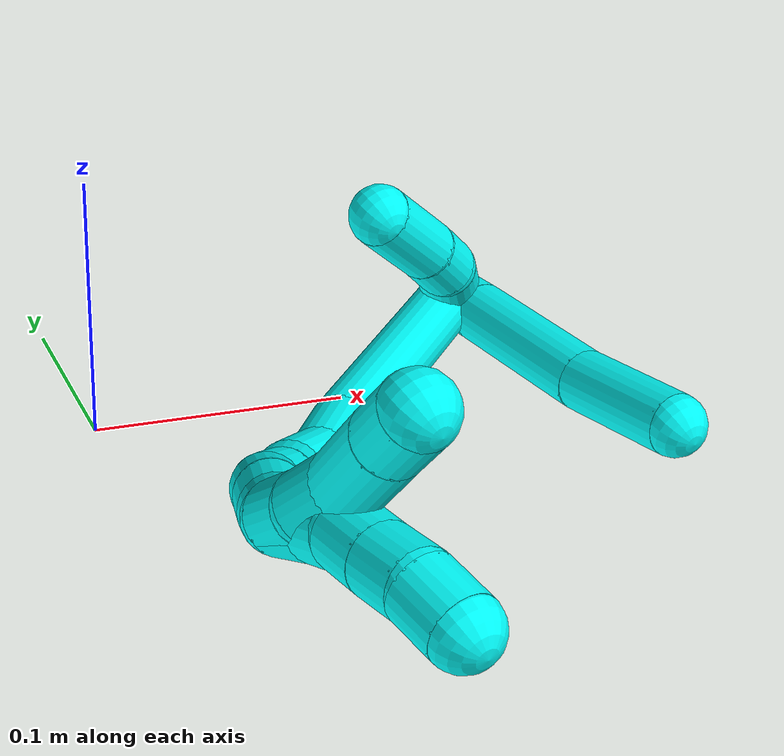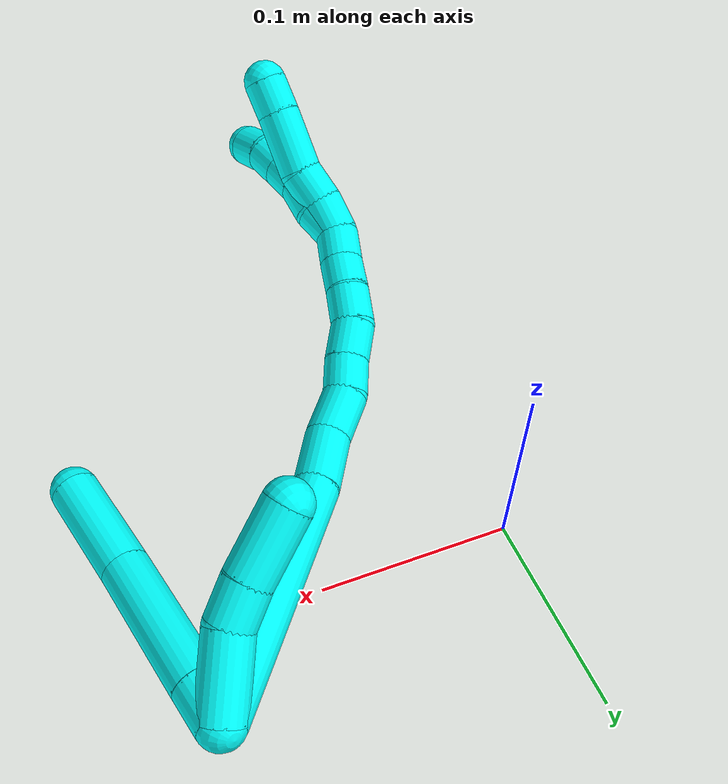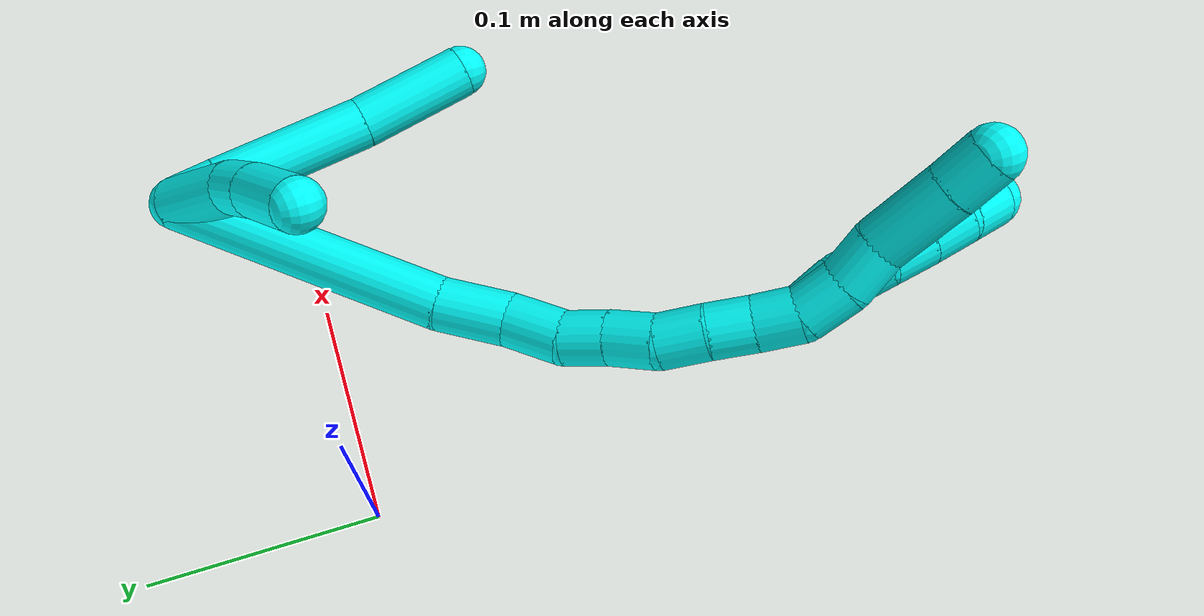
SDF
<sdf version="1.7">
 <world name="default">
  <model name="3">
   <static>0</static>
   <link name="3">
    <collision name="collision-cylinder-e_1_2_8">
     <pose>-0.000179 0.002994 0.010444 -0.279227 -0.016436 0.00231</pose>
     <geometry><cylinder><radius>0.0125</radius><length>0.021732</length></cylinder></geometry>
     <surface>
      <friction><ode><mu>1.16</mu><mu2>1.16</mu2><slip1>0</slip1><slip2>0</slip2></ode></friction>
      <contact><ode><kp>1e+06</kp><kd>1</kd><max_vel>0</max_vel><min_depth>0.001</min_depth></ode></contact>
     </surface>
    </collision>
    <visual name="visual-cylinder-e_1_2_8">
     <pose>-0.000179 0.002994 0.010444 -0.279227 -0.016436 0.00231</pose>
     <geometry><cylinder><radius>0.0125</radius><length>0.021732</length></cylinder></geometry>
     <material><ambient>0.003922 1 0.996078 1</ambient></material>
    </visual>
    <collision name="collision-cylinder-e_2_8_9">
     <pose>-0.001344 0.01535 0.056258 -0.258739 -0.026975 0.00351</pose>
     <geometry><cylinder><radius>0.0125</radius><length>0.073203</length></cylinder></geometry>
     <surface>
      <friction><ode><mu>1.16</mu><mu2>1.16</mu2><slip1>0</slip1><slip2>0</slip2></ode></friction>
      <contact><ode><kp>1e+06</kp><kd>1</kd><max_vel>0</max_vel><min_depth>0.001</min_depth></ode></contact>
     </surface>
    </collision>
    <visual name="visual-cylinder-e_2_8_9">
     <pose>-0.001344 0.01535 0.056258 -0.258739 -0.026975 0.00351</pose>
     <geometry><cylinder><radius>0.0125</radius><length>0.073203</length></cylinder></geometry>
     <material><ambient>0.003922 1 0.996078 1</ambient></material>
    </visual>
    <collision name="collision-cylinder-e_3_9_6">
     <pose>-0.002087 0.033938 0.117567 -0.341724 0.008894 -0.001535</pose>
     <geometry><cylinder><radius>0.0125</radius><length>0.055065</length></cylinder></geometry>
     <surface>
      <friction><ode><mu>1.16</mu><mu2>1.16</mu2><slip1>0</slip1><slip2>0</slip2></ode></friction>
      <contact><ode><kp>1e+06</kp><kd>1</kd><max_vel>0</max_vel><min_depth>0.001</min_depth></ode></contact>
     </surface>
    </collision>
    <visual name="visual-cylinder-e_3_9_6">
     <pose>-0.002087 0.033938 0.117567 -0.341724 0.008894 -0.001535</pose>
     <geometry><cylinder><radius>0.0125</radius><length>0.055065</length></cylinder></geometry>
     <material><ambient>0.003922 1 0.996078 1</ambient></material>
    </visual>
    <collision name="collision-cylinder-e_1_2_10">
     <pose>-0.010022 0.015885 0.008011 -1.10369 -0.513 0.320179</pose>
     <geometry><cylinder><radius>0.0125</radius><length>0.040839</length></cylinder></geometry>
     <surface>
      <friction><ode><mu>1.16</mu><mu2>1.16</mu2><slip1>0</slip1><slip2>0</slip2></ode></friction>
      <contact><ode><kp>1e+06</kp><kd>1</kd><max_vel>0</max_vel><min_depth>0.001</min_depth></ode></contact>
     </surface>
    </collision>
    <visual name="visual-cylinder-e_1_2_10">
     <pose>-0.010022 0.015885 0.008011 -1.10369 -0.513 0.320179</pose>
     <geometry><cylinder><radius>0.0125</radius><length>0.040839</length></cylinder></geometry>
     <material><ambient>0.003922 1 0.996078 1</ambient></material>
    </visual>
    <collision name="collision-cylinder-e_2_10_11">
     <pose>-0.027335 0.039462 0.017554 -1.37431 -0.748997 0.623979</pose>
     <geometry><cylinder><radius>0.0125</radius><length>0.021416</length></cylinder></geometry>
     <surface>
      <friction><ode><mu>1.16</mu><mu2>1.16</mu2><slip1>0</slip1><slip2>0</slip2></ode></friction>
      <contact><ode><kp>1e+06</kp><kd>1</kd><max_vel>0</max_vel><min_depth>0.001</min_depth></ode></contact>
     </surface>
    </collision>
    <visual name="visual-cylinder-e_2_10_11">
     <pose>-0.027335 0.039462 0.017554 -1.37431 -0.748997 0.623979</pose>
     <geometry><cylinder><radius>0.0125</radius><length>0.021416</length></cylinder></geometry>
     <material><ambient>0.003922 1 0.996078 1</ambient></material>
    </visual>
    <collision name="collision-cylinder-e_3_11_5">
     <pose>-0.048393 0.059997 0.020375 -1.47069 -0.817597 0.746958</pose>
     <geometry><cylinder><radius>0.0125</radius><length>0.037745</length></cylinder></geometry>
     <surface>
      <friction><ode><mu>1.16</mu><mu2>1.16</mu2><slip1>0</slip1><slip2>0</slip2></ode></friction>
      <contact><ode><kp>1e+06</kp><kd>1</kd><max_vel>0</max_vel><min_depth>0.001</min_depth></ode></contact>
     </surface>
    </collision>
    <visual name="visual-cylinder-e_3_11_5">
     <pose>-0.048393 0.059997 0.020375 -1.47069 -0.817597 0.746958</pose>
     <geometry><cylinder><radius>0.0125</radius><length>0.037745</length></cylinder></geometry>
     <material><ambient>0.003922 1 0.996078 1</ambient></material>
    </visual>
    <collision name="collision-cylinder-e_1_2_12">
     <pose>-0.053151 0.012452 0.03866 -0.31159 -0.91829 0.154993</pose>
     <geometry><cylinder><radius>0.0125</radius><length>0.133785</length></cylinder></geometry>
     <surface>
      <friction><ode><mu>1.16</mu><mu2>1.16</mu2><slip1>0</slip1><slip2>0</slip2></ode></friction>
      <contact><ode><kp>1e+06</kp><kd>1</kd><max_vel>0</max_vel><min_depth>0.001</min_depth></ode></contact>
     </surface>
    </collision>
    <visual name="visual-cylinder-e_1_2_12">
     <pose>-0.053151 0.012452 0.03866 -0.31159 -0.91829 0.154993</pose>
     <geometry><cylinder><radius>0.0125</radius><length>0.133785</length></cylinder></geometry>
     <material><ambient>0.003922 1 0.996078 1</ambient></material>
    </visual>
    <collision name="collision-cylinder-e_2_12_13">
     <pose>-0.118083 0.029416 0.088004 -0.399629 -0.793298 0.169243</pose>
     <geometry><cylinder><radius>0.0125</radius><length>0.033064</length></cylinder></geometry>
     <surface>
      <friction><ode><mu>1.16</mu><mu2>1.16</mu2><slip1>0</slip1><slip2>0</slip2></ode></friction>
      <contact><ode><kp>1e+06</kp><kd>1</kd><max_vel>0</max_vel><min_depth>0.001</min_depth></ode></contact>
     </surface>
    </collision>
    <visual name="visual-cylinder-e_2_12_13">
     <pose>-0.118083 0.029416 0.088004 -0.399629 -0.793298 0.169243</pose>
     <geometry><cylinder><radius>0.0125</radius><length>0.033064</length></cylinder></geometry>
     <material><ambient>0.003922 1 0.996078 1</ambient></material>
    </visual>
    <collision name="collision-cylinder-e_3_13_14">
     <pose>-0.140885 0.039428 0.10488 -0.726287 -0.926275 0.375052</pose>
     <geometry><cylinder><radius>0.0125</radius><length>0.027572</length></cylinder></geometry>
     <surface>
      <friction><ode><mu>1.16</mu><mu2>1.16</mu2><slip1>0</slip1><slip2>0</slip2></ode></friction>
      <contact><ode><kp>1e+06</kp><kd>1</kd><max_vel>0</max_vel><min_depth>0.001</min_depth></ode></contact>
     </surface>
    </collision>
    <visual name="visual-cylinder-e_3_13_14">
     <pose>-0.140885 0.039428 0.10488 -0.726287 -0.926275 0.375052</pose>
     <geometry><cylinder><radius>0.0125</radius><length>0.027572</length></cylinder></geometry>
     <material><ambient>0.003922 1 0.996078 1</ambient></material>
    </visual>
    <collision name="collision-cylinder-e_4_14_15">
     <pose>-0.157861 0.050612 0.117468 -0.726492 -0.608072 0.23741</pose>
     <geometry><cylinder><radius>0.0125</radius><length>0.020849</length></cylinder></geometry>
     <surface>
      <friction><ode><mu>1.16</mu><mu2>1.16</mu2><slip1>0</slip1><slip2>0</slip2></ode></friction>
      <contact><ode><kp>1e+06</kp><kd>1</kd><max_vel>0</max_vel><min_depth>0.001</min_depth></ode></contact>
     </surface>
    </collision>
    <visual name="visual-cylinder-e_4_14_15">
     <pose>-0.157861 0.050612 0.117468 -0.726492 -0.608072 0.23741</pose>
     <geometry><cylinder><radius>0.0125</radius><length>0.020849</length></cylinder></geometry>
     <material><ambient>0.003922 1 0.996078 1</ambient></material>
    </visual>
    <collision name="collision-cylinder-e_5_15_16">
     <pose>-0.171133 0.062599 0.129687 -0.824962 -0.706016 0.319697</pose>
     <geometry><cylinder><radius>0.0125</radius><length>0.022555</length></cylinder></geometry>
     <surface>
      <friction><ode><mu>1.16</mu><mu2>1.16</mu2><slip1>0</slip1><slip2>0</slip2></ode></friction>
      <contact><ode><kp>1e+06</kp><kd>1</kd><max_vel>0</max_vel><min_depth>0.001</min_depth></ode></contact>
     </surface>
    </collision>
    <visual name="visual-cylinder-e_5_15_16">
     <pose>-0.171133 0.062599 0.129687 -0.824962 -0.706016 0.319697</pose>
     <geometry><cylinder><radius>0.0125</radius><length>0.022555</length></cylinder></geometry>
     <material><ambient>0.003922 1 0.996078 1</ambient></material>
    </visual>
    <collision name="collision-cylinder-e_6_16_17">
     <pose>-0.182861 0.075364 0.143044 -0.70899 -0.418173 0.156752</pose>
     <geometry><cylinder><radius>0.0125</radius><length>0.021722</length></cylinder></geometry>
     <surface>
      <friction><ode><mu>1.16</mu><mu2>1.16</mu2><slip1>0</slip1><slip2>0</slip2></ode></friction>
      <contact><ode><kp>1e+06</kp><kd>1</kd><max_vel>0</max_vel><min_depth>0.001</min_depth></ode></contact>
     </surface>
    </collision>
    <visual name="visual-cylinder-e_6_16_17">
     <pose>-0.182861 0.075364 0.143044 -0.70899 -0.418173 0.156752</pose>
     <geometry><cylinder><radius>0.0125</radius><length>0.021722</length></cylinder></geometry>
     <material><ambient>0.003922 1 0.996078 1</ambient></material>
    </visual>
    <collision name="collision-cylinder-e_7_17_18">
     <pose>-0.191412 0.086786 0.158332 -0.569082 -0.422721 0.125347</pose>
     <geometry><cylinder><radius>0.0125</radius><length>0.020187</length></cylinder></geometry>
     <surface>
      <friction><ode><mu>1.16</mu><mu2>1.16</mu2><slip1>0</slip1><slip2>0</slip2></ode></friction>
      <contact><ode><kp>1e+06</kp><kd>1</kd><max_vel>0</max_vel><min_depth>0.001</min_depth></ode></contact>
     </surface>
    </collision>
    <visual name="visual-cylinder-e_7_17_18">
     <pose>-0.191412 0.086786 0.158332 -0.569082 -0.422721 0.125347</pose>
     <geometry><cylinder><radius>0.0125</radius><length>0.020187</length></cylinder></geometry>
     <material><ambient>0.003922 1 0.996078 1</ambient></material>
    </visual>
    <collision name="collision-cylinder-e_8_18_1">
     <pose>-0.199652 0.09794 0.172979 -0.731986 -0.41646 0.161608</pose>
     <geometry><cylinder><radius>0.0125</radius><length>0.020266</length></cylinder></geometry>
     <surface>
      <friction><ode><mu>1.16</mu><mu2>1.16</mu2><slip1>0</slip1><slip2>0</slip2></ode></friction>
      <contact><ode><kp>1e+06</kp><kd>1</kd><max_vel>0</max_vel><min_depth>0.001</min_depth></ode></contact>
     </surface>
    </collision>
    <visual name="visual-cylinder-e_8_18_1">
     <pose>-0.199652 0.09794 0.172979 -0.731986 -0.41646 0.161608</pose>
     <geometry><cylinder><radius>0.0125</radius><length>0.020266</length></cylinder></geometry>
     <material><ambient>0.003922 1 0.996078 1</ambient></material>
    </visual>
    <collision name="collision-cylinder-e_1_1_19">
     <pose>-0.204157 0.112344 0.186902 -0.862647 -0.037612 0.017312</pose>
     <geometry><cylinder><radius>0.0125</radius><length>0.021634</length></cylinder></geometry>
     <surface>
      <friction><ode><mu>1.16</mu><mu2>1.16</mu2><slip1>0</slip1><slip2>0</slip2></ode></friction>
      <contact><ode><kp>1e+06</kp><kd>1</kd><max_vel>0</max_vel><min_depth>0.001</min_depth></ode></contact>
     </surface>
    </collision>
    <visual name="visual-cylinder-e_1_1_19">
     <pose>-0.204157 0.112344 0.186902 -0.862647 -0.037612 0.017312</pose>
     <geometry><cylinder><radius>0.0125</radius><length>0.021634</length></cylinder></geometry>
     <material><ambient>0.003922 1 0.996078 1</ambient></material>
    </visual>
    <collision name="collision-cylinder-e_2_19_20">
     <pose>-0.20249 0.129272 0.19962 -0.992757 0.196727 -0.106793</pose>
     <geometry><cylinder><radius>0.0125</radius><length>0.021227</length></cylinder></geometry>
     <surface>
      <friction><ode><mu>1.16</mu><mu2>1.16</mu2><slip1>0</slip1><slip2>0</slip2></ode></friction>
      <contact><ode><kp>1e+06</kp><kd>1</kd><max_vel>0</max_vel><min_depth>0.001</min_depth></ode></contact>
     </surface>
    </collision>
    <visual name="visual-cylinder-e_2_19_20">
     <pose>-0.20249 0.129272 0.19962 -0.992757 0.196727 -0.106793</pose>
     <geometry><cylinder><radius>0.0125</radius><length>0.021227</length></cylinder></geometry>
     <material><ambient>0.003922 1 0.996078 1</ambient></material>
    </visual>
    <collision name="collision-cylinder-e_3_20_21">
     <pose>-0.201002 0.154207 0.213929 -1.08219 -0.031955 0.019204</pose>
     <geometry><cylinder><radius>0.0125</radius><length>0.036753</length></cylinder></geometry>
     <surface>
      <friction><ode><mu>1.16</mu><mu2>1.16</mu2><slip1>0</slip1><slip2>0</slip2></ode></friction>
      <contact><ode><kp>1e+06</kp><kd>1</kd><max_vel>0</max_vel><min_depth>0.001</min_depth></ode></contact>
     </surface>
    </collision>
    <visual name="visual-cylinder-e_3_20_21">
     <pose>-0.201002 0.154207 0.213929 -1.08219 -0.031955 0.019204</pose>
     <geometry><cylinder><radius>0.0125</radius><length>0.036753</length></cylinder></geometry>
     <material><ambient>0.003922 1 0.996078 1</ambient></material>
    </visual>
    <collision name="collision-cylinder-e_4_21_4">
     <pose>-0.201559 0.179411 0.227363 -1.07908 0.003042 -0.001822</pose>
     <geometry><cylinder><radius>0.0125</radius><length>0.020387</length></cylinder></geometry>
     <surface>
      <friction><ode><mu>1.16</mu><mu2>1.16</mu2><slip1>0</slip1><slip2>0</slip2></ode></friction>
      <contact><ode><kp>1e+06</kp><kd>1</kd><max_vel>0</max_vel><min_depth>0.001</min_depth></ode></contact>
     </surface>
    </collision>
    <visual name="visual-cylinder-e_4_21_4">
     <pose>-0.201559 0.179411 0.227363 -1.07908 0.003042 -0.001822</pose>
     <geometry><cylinder><radius>0.0125</radius><length>0.020387</length></cylinder></geometry>
     <material><ambient>0.003922 1 0.996078 1</ambient></material>
    </visual>
    <collision name="collision-cylinder-e_1_1_22">
     <pose>-0.202444 0.109497 0.18821 -0.571612 0.131011 -0.038548</pose>
     <geometry><cylinder><radius>0.0125</radius><length>0.02</length></cylinder></geometry>
     <surface>
      <friction><ode><mu>1.16</mu><mu2>1.16</mu2><slip1>0</slip1><slip2>0</slip2></ode></friction>
      <contact><ode><kp>1e+06</kp><kd>1</kd><max_vel>0</max_vel><min_depth>0.001</min_depth></ode></contact>
     </surface>
    </collision>
    <visual name="visual-cylinder-e_1_1_22">
     <pose>-0.202444 0.109497 0.18821 -0.571612 0.131011 -0.038548</pose>
     <geometry><cylinder><radius>0.0125</radius><length>0.02</length></cylinder></geometry>
     <material><ambient>0.003922 1 0.996078 1</ambient></material>
    </visual>
    <collision name="collision-cylinder-e_2_22_23">
     <pose>-0.202061 0.12061 0.204678 -0.615608 -0.092433 0.029404</pose>
     <geometry><cylinder><radius>0.0125</radius><length>0.02</length></cylinder></geometry>
     <surface>
      <friction><ode><mu>1.16</mu><mu2>1.16</mu2><slip1>0</slip1><slip2>0</slip2></ode></friction>
      <contact><ode><kp>1e+06</kp><kd>1</kd><max_vel>0</max_vel><min_depth>0.001</min_depth></ode></contact>
     </surface>
    </collision>
    <visual name="visual-cylinder-e_2_22_23">
     <pose>-0.202061 0.12061 0.204678 -0.615608 -0.092433 0.029404</pose>
     <geometry><cylinder><radius>0.0125</radius><length>0.02</length></cylinder></geometry>
     <material><ambient>0.003922 1 0.996078 1</ambient></material>
    </visual>
    <collision name="collision-cylinder-e_3_23_24">
     <pose>-0.203334 0.129395 0.222329 -0.308501 -0.035046 0.00545</pose>
     <geometry><cylinder><radius>0.0125</radius><length>0.02</length></cylinder></geometry>
     <surface>
      <friction><ode><mu>1.16</mu><mu2>1.16</mu2><slip1>0</slip1><slip2>0</slip2></ode></friction>
      <contact><ode><kp>1e+06</kp><kd>1</kd><max_vel>0</max_vel><min_depth>0.001</min_depth></ode></contact>
     </surface>
    </collision>
    <visual name="visual-cylinder-e_3_23_24">
     <pose>-0.203334 0.129395 0.222329 -0.308501 -0.035046 0.00545</pose>
     <geometry><cylinder><radius>0.0125</radius><length>0.02</length></cylinder></geometry>
     <material><ambient>0.003922 1 0.996078 1</ambient></material>
    </visual>
    <collision name="collision-cylinder-e_4_24_25">
     <pose>-0.203738 0.135638 0.241322 -0.326707 -0.005325 0.000878</pose>
     <geometry><cylinder><radius>0.0125</radius><length>0.02</length></cylinder></geometry>
     <surface>
      <friction><ode><mu>1.16</mu><mu2>1.16</mu2><slip1>0</slip1><slip2>0</slip2></ode></friction>
      <contact><ode><kp>1e+06</kp><kd>1</kd><max_vel>0</max_vel><min_depth>0.001</min_depth></ode></contact>
     </surface>
    </collision>
    <visual name="visual-cylinder-e_4_24_25">
     <pose>-0.203738 0.135638 0.241322 -0.326707 -0.005325 0.000878</pose>
     <geometry><cylinder><radius>0.0125</radius><length>0.02</length></cylinder></geometry>
     <material><ambient>0.003922 1 0.996078 1</ambient></material>
    </visual>
    <collision name="collision-cylinder-e_5_25_3">
     <pose>-0.203308 0.139549 0.260757 -0.070318 0.048317 -0.0017</pose>
     <geometry><cylinder><radius>0.0125</radius><length>0.02</length></cylinder></geometry>
     <surface>
      <friction><ode><mu>1.16</mu><mu2>1.16</mu2><slip1>0</slip1><slip2>0</slip2></ode></friction>
      <contact><ode><kp>1e+06</kp><kd>1</kd><max_vel>0</max_vel><min_depth>0.001</min_depth></ode></contact>
     </surface>
    </collision>
    <visual name="visual-cylinder-e_5_25_3">
     <pose>-0.203308 0.139549 0.260757 -0.070318 0.048317 -0.0017</pose>
     <geometry><cylinder><radius>0.0125</radius><length>0.02</length></cylinder></geometry>
     <material><ambient>0.003922 1 0.996078 1</ambient></material>
    </visual>
    <collision name="collision-sphere-3">
     <pose>-0.202825 0.140251 0.27072 0 -0 0</pose>
     <geometry><sphere><radius>0.0125</radius></sphere></geometry>
     <surface>
      <friction><ode><mu>1.16</mu><mu2>1.16</mu2><slip1>0</slip1><slip2>0</slip2></ode></friction>
      <contact><ode><kp>1e+06</kp><kd>1</kd><max_vel>0</max_vel><min_depth>0.001</min_depth></ode></contact>
     </surface>
    </collision>
    <visual name="visual-sphere-3">
     <pose>-0.202825 0.140251 0.27072 0 -0 0</pose>
     <geometry><sphere><radius>0.0125</radius></sphere></geometry>
     <material><ambient>0.003922 1 0.996078 1</ambient></material>
    </visual>
    <collision name="collision-sphere-25">
     <pose>-0.203791 0.138848 0.250793 0 -0 0</pose>
     <geometry><sphere><radius>0.0125</radius></sphere></geometry>
     <surface>
      <friction><ode><mu>1.16</mu><mu2>1.16</mu2><slip1>0</slip1><slip2>0</slip2></ode></friction>
      <contact><ode><kp>1e+06</kp><kd>1</kd><max_vel>0</max_vel><min_depth>0.001</min_depth></ode></contact>
     </surface>
    </collision>
    <visual name="visual-sphere-25">
     <pose>-0.203791 0.138848 0.250793 0 -0 0</pose>
     <geometry><sphere><radius>0.0125</radius></sphere></geometry>
     <material><ambient>0.003922 1 0.996078 1</ambient></material>
    </visual>
    <collision name="collision-sphere-24">
     <pose>-0.203685 0.132429 0.231851 0 -0 0</pose>
     <geometry><sphere><radius>0.0125</radius></sphere></geometry>
     <surface>
      <friction><ode><mu>1.16</mu><mu2>1.16</mu2><slip1>0</slip1><slip2>0</slip2></ode></friction>
      <contact><ode><kp>1e+06</kp><kd>1</kd><max_vel>0</max_vel><min_depth>0.001</min_depth></ode></contact>
     </surface>
    </collision>
    <visual name="visual-sphere-24">
     <pose>-0.203685 0.132429 0.231851 0 -0 0</pose>
     <geometry><sphere><radius>0.0125</radius></sphere></geometry>
     <material><ambient>0.003922 1 0.996078 1</ambient></material>
    </visual>
    <collision name="collision-sphere-23">
     <pose>-0.202984 0.12636 0.212807 0 -0 0</pose>
     <geometry><sphere><radius>0.0125</radius></sphere></geometry>
     <surface>
      <friction><ode><mu>1.16</mu><mu2>1.16</mu2><slip1>0</slip1><slip2>0</slip2></ode></friction>
      <contact><ode><kp>1e+06</kp><kd>1</kd><max_vel>0</max_vel><min_depth>0.001</min_depth></ode></contact>
     </surface>
    </collision>
    <visual name="visual-sphere-23">
     <pose>-0.202984 0.12636 0.212807 0 -0 0</pose>
     <geometry><sphere><radius>0.0125</radius></sphere></geometry>
     <material><ambient>0.003922 1 0.996078 1</ambient></material>
    </visual>
    <collision name="collision-sphere-22">
     <pose>-0.201138 0.11486 0.196548 0 -0 0</pose>
     <geometry><sphere><radius>0.0125</radius></sphere></geometry>
     <surface>
      <friction><ode><mu>1.16</mu><mu2>1.16</mu2><slip1>0</slip1><slip2>0</slip2></ode></friction>
      <contact><ode><kp>1e+06</kp><kd>1</kd><max_vel>0</max_vel><min_depth>0.001</min_depth></ode></contact>
     </surface>
    </collision>
    <visual name="visual-sphere-22">
     <pose>-0.201138 0.11486 0.196548 0 -0 0</pose>
     <geometry><sphere><radius>0.0125</radius></sphere></geometry>
     <material><ambient>0.003922 1 0.996078 1</ambient></material>
    </visual>
    <collision name="collision-sphere-4">
     <pose>-0.201528 0.188396 0.232175 0 -0 0</pose>
     <geometry><sphere><radius>0.0125</radius></sphere></geometry>
     <surface>
      <friction><ode><mu>1.16</mu><mu2>1.16</mu2><slip1>0</slip1><slip2>0</slip2></ode></friction>
      <contact><ode><kp>1e+06</kp><kd>1</kd><max_vel>0</max_vel><min_depth>0.001</min_depth></ode></contact>
     </surface>
    </collision>
    <visual name="visual-sphere-4">
     <pose>-0.201528 0.188396 0.232175 0 -0 0</pose>
     <geometry><sphere><radius>0.0125</radius></sphere></geometry>
     <material><ambient>0.003922 1 0.996078 1</ambient></material>
    </visual>
    <collision name="collision-sphere-21">
     <pose>-0.20159 0.170425 0.22255 0 -0 0</pose>
     <geometry><sphere><radius>0.0125</radius></sphere></geometry>
     <surface>
      <friction><ode><mu>1.16</mu><mu2>1.16</mu2><slip1>0</slip1><slip2>0</slip2></ode></friction>
      <contact><ode><kp>1e+06</kp><kd>1</kd><max_vel>0</max_vel><min_depth>0.001</min_depth></ode></contact>
     </surface>
    </collision>
    <visual name="visual-sphere-21">
     <pose>-0.20159 0.170425 0.22255 0 -0 0</pose>
     <geometry><sphere><radius>0.0125</radius></sphere></geometry>
     <material><ambient>0.003922 1 0.996078 1</ambient></material>
    </visual>
    <collision name="collision-sphere-20">
     <pose>-0.200415 0.137989 0.205307 0 -0 0</pose>
     <geometry><sphere><radius>0.0125</radius></sphere></geometry>
     <surface>
      <friction><ode><mu>1.16</mu><mu2>1.16</mu2><slip1>0</slip1><slip2>0</slip2></ode></friction>
      <contact><ode><kp>1e+06</kp><kd>1</kd><max_vel>0</max_vel><min_depth>0.001</min_depth></ode></contact>
     </surface>
    </collision>
    <visual name="visual-sphere-20">
     <pose>-0.200415 0.137989 0.205307 0 -0 0</pose>
     <geometry><sphere><radius>0.0125</radius></sphere></geometry>
     <material><ambient>0.003922 1 0.996078 1</ambient></material>
    </visual>
    <collision name="collision-sphere-11">
     <pose>-0.034626 0.047153 0.019085 0 -0 0</pose>
     <geometry><sphere><radius>0.0125</radius></sphere></geometry>
     <surface>
      <friction><ode><mu>1.16</mu><mu2>1.16</mu2><slip1>0</slip1><slip2>0</slip2></ode></friction>
      <contact><ode><kp>1e+06</kp><kd>1</kd><max_vel>0</max_vel><min_depth>0.001</min_depth></ode></contact>
     </surface>
    </collision>
    <visual name="visual-sphere-11">
     <pose>-0.034626 0.047153 0.019085 0 -0 0</pose>
     <geometry><sphere><radius>0.0125</radius></sphere></geometry>
     <material><ambient>0.003922 1 0.996078 1</ambient></material>
    </visual>
    <collision name="collision-sphere-10">
     <pose>-0.020043 0.03177 0.016023 0 -0 0</pose>
     <geometry><sphere><radius>0.0125</radius></sphere></geometry>
     <surface>
      <friction><ode><mu>1.16</mu><mu2>1.16</mu2><slip1>0</slip1><slip2>0</slip2></ode></friction>
      <contact><ode><kp>1e+06</kp><kd>1</kd><max_vel>0</max_vel><min_depth>0.001</min_depth></ode></contact>
     </surface>
    </collision>
    <visual name="visual-sphere-10">
     <pose>-0.020043 0.03177 0.016023 0 -0 0</pose>
     <geometry><sphere><radius>0.0125</radius></sphere></geometry>
     <material><ambient>0.003922 1 0.996078 1</ambient></material>
    </visual>
    <collision name="collision-sphere-6">
     <pose>-0.001842 0.043164 0.143507 0 -0 0</pose>
     <geometry><sphere><radius>0.0125</radius></sphere></geometry>
     <surface>
      <friction><ode><mu>1.16</mu><mu2>1.16</mu2><slip1>0</slip1><slip2>0</slip2></ode></friction>
      <contact><ode><kp>1e+06</kp><kd>1</kd><max_vel>0</max_vel><min_depth>0.001</min_depth></ode></contact>
     </surface>
    </collision>
    <visual name="visual-sphere-6">
     <pose>-0.001842 0.043164 0.143507 0 -0 0</pose>
     <geometry><sphere><radius>0.0125</radius></sphere></geometry>
     <material><ambient>0.003922 1 0.996078 1</ambient></material>
    </visual>
    <collision name="collision-sphere-9">
     <pose>-0.002332 0.024712 0.091628 0 -0 0</pose>
     <geometry><sphere><radius>0.0125</radius></sphere></geometry>
     <surface>
      <friction><ode><mu>1.16</mu><mu2>1.16</mu2><slip1>0</slip1><slip2>0</slip2></ode></friction>
      <contact><ode><kp>1e+06</kp><kd>1</kd><max_vel>0</max_vel><min_depth>0.001</min_depth></ode></contact>
     </surface>
    </collision>
    <visual name="visual-sphere-9">
     <pose>-0.002332 0.024712 0.091628 0 -0 0</pose>
     <geometry><sphere><radius>0.0125</radius></sphere></geometry>
     <material><ambient>0.003922 1 0.996078 1</ambient></material>
    </visual>
    <collision name="collision-sphere-2">
     <geometry><sphere><radius>0.0125</radius></sphere></geometry>
     <surface>
      <friction><ode><mu>1.16</mu><mu2>1.16</mu2><slip1>0</slip1><slip2>0</slip2></ode></friction>
      <contact><ode><kp>1e+06</kp><kd>1</kd><max_vel>0</max_vel><min_depth>0.001</min_depth></ode></contact>
     </surface>
    </collision>
    <visual name="visual-sphere-2">
     <geometry><sphere><radius>0.0125</radius></sphere></geometry>
     <material><ambient>0.003922 1 0.996078 1</ambient></material>
    </visual>
    <collision name="collision-sphere-19">
     <pose>-0.204564 0.120554 0.193933 0 -0 0</pose>
     <geometry><sphere><radius>0.0125</radius></sphere></geometry>
     <surface>
      <friction><ode><mu>1.16</mu><mu2>1.16</mu2><slip1>0</slip1><slip2>0</slip2></ode></friction>
      <contact><ode><kp>1e+06</kp><kd>1</kd><max_vel>0</max_vel><min_depth>0.001</min_depth></ode></contact>
     </surface>
    </collision>
    <visual name="visual-sphere-19">
     <pose>-0.204564 0.120554 0.193933 0 -0 0</pose>
     <geometry><sphere><radius>0.0125</radius></sphere></geometry>
     <material><ambient>0.003922 1 0.996078 1</ambient></material>
    </visual>
    <collision name="collision-sphere-8">
     <pose>-0.000357 0.005989 0.020887 0 -0 0</pose>
     <geometry><sphere><radius>0.0125</radius></sphere></geometry>
     <surface>
      <friction><ode><mu>1.16</mu><mu2>1.16</mu2><slip1>0</slip1><slip2>0</slip2></ode></friction>
      <contact><ode><kp>1e+06</kp><kd>1</kd><max_vel>0</max_vel><min_depth>0.001</min_depth></ode></contact>
     </surface>
    </collision>
    <visual name="visual-sphere-8">
     <pose>-0.000357 0.005989 0.020887 0 -0 0</pose>
     <geometry><sphere><radius>0.0125</radius></sphere></geometry>
     <material><ambient>0.003922 1 0.996078 1</ambient></material>
    </visual>
    <collision name="collision-sphere-5">
     <pose>-0.062161 0.072841 0.021665 0 -0 0</pose>
     <geometry><sphere><radius>0.0125</radius></sphere></geometry>
     <surface>
      <friction><ode><mu>1.16</mu><mu2>1.16</mu2><slip1>0</slip1><slip2>0</slip2></ode></friction>
      <contact><ode><kp>1e+06</kp><kd>1</kd><max_vel>0</max_vel><min_depth>0.001</min_depth></ode></contact>
     </surface>
    </collision>
    <visual name="visual-sphere-5">
     <pose>-0.062161 0.072841 0.021665 0 -0 0</pose>
     <geometry><sphere><radius>0.0125</radius></sphere></geometry>
     <material><ambient>0.003922 1 0.996078 1</ambient></material>
    </visual>
    <collision name="collision-sphere-12">
     <pose>-0.106301 0.024903 0.07732 0 -0 0</pose>
     <geometry><sphere><radius>0.0125</radius></sphere></geometry>
     <surface>
      <friction><ode><mu>1.16</mu><mu2>1.16</mu2><slip1>0</slip1><slip2>0</slip2></ode></friction>
      <contact><ode><kp>1e+06</kp><kd>1</kd><max_vel>0</max_vel><min_depth>0.001</min_depth></ode></contact>
     </surface>
    </collision>
    <visual name="visual-sphere-12">
     <pose>-0.106301 0.024903 0.07732 0 -0 0</pose>
     <geometry><sphere><radius>0.0125</radius></sphere></geometry>
     <material><ambient>0.003922 1 0.996078 1</ambient></material>
    </visual>
    <collision name="collision-sphere-13">
     <pose>-0.129865 0.033928 0.098687 0 -0 0</pose>
     <geometry><sphere><radius>0.0125</radius></sphere></geometry>
     <surface>
      <friction><ode><mu>1.16</mu><mu2>1.16</mu2><slip1>0</slip1><slip2>0</slip2></ode></friction>
      <contact><ode><kp>1e+06</kp><kd>1</kd><max_vel>0</max_vel><min_depth>0.001</min_depth></ode></contact>
     </surface>
    </collision>
    <visual name="visual-sphere-13">
     <pose>-0.129865 0.033928 0.098687 0 -0 0</pose>
     <geometry><sphere><radius>0.0125</radius></sphere></geometry>
     <material><ambient>0.003922 1 0.996078 1</ambient></material>
    </visual>
    <collision name="collision-sphere-14">
     <pose>-0.151906 0.044929 0.111072 0 -0 0</pose>
     <geometry><sphere><radius>0.0125</radius></sphere></geometry>
     <surface>
      <friction><ode><mu>1.16</mu><mu2>1.16</mu2><slip1>0</slip1><slip2>0</slip2></ode></friction>
      <contact><ode><kp>1e+06</kp><kd>1</kd><max_vel>0</max_vel><min_depth>0.001</min_depth></ode></contact>
     </surface>
    </collision>
    <visual name="visual-sphere-14">
     <pose>-0.151906 0.044929 0.111072 0 -0 0</pose>
     <geometry><sphere><radius>0.0125</radius></sphere></geometry>
     <material><ambient>0.003922 1 0.996078 1</ambient></material>
    </visual>
    <collision name="collision-sphere-15">
     <pose>-0.163816 0.056296 0.123864 0 -0 0</pose>
     <geometry><sphere><radius>0.0125</radius></sphere></geometry>
     <surface>
      <friction><ode><mu>1.16</mu><mu2>1.16</mu2><slip1>0</slip1><slip2>0</slip2></ode></friction>
      <contact><ode><kp>1e+06</kp><kd>1</kd><max_vel>0</max_vel><min_depth>0.001</min_depth></ode></contact>
     </surface>
    </collision>
    <visual name="visual-sphere-15">
     <pose>-0.163816 0.056296 0.123864 0 -0 0</pose>
     <geometry><sphere><radius>0.0125</radius></sphere></geometry>
     <material><ambient>0.003922 1 0.996078 1</ambient></material>
    </visual>
    <collision name="collision-sphere-16">
     <pose>-0.17845 0.068902 0.13551 0 -0 0</pose>
     <geometry><sphere><radius>0.0125</radius></sphere></geometry>
     <surface>
      <friction><ode><mu>1.16</mu><mu2>1.16</mu2><slip1>0</slip1><slip2>0</slip2></ode></friction>
      <contact><ode><kp>1e+06</kp><kd>1</kd><max_vel>0</max_vel><min_depth>0.001</min_depth></ode></contact>
     </surface>
    </collision>
    <visual name="visual-sphere-16">
     <pose>-0.17845 0.068902 0.13551 0 -0 0</pose>
     <geometry><sphere><radius>0.0125</radius></sphere></geometry>
     <material><ambient>0.003922 1 0.996078 1</ambient></material>
    </visual>
    <collision name="collision-sphere-17">
     <pose>-0.187271 0.081826 0.150577 0 -0 0</pose>
     <geometry><sphere><radius>0.0125</radius></sphere></geometry>
     <surface>
      <friction><ode><mu>1.16</mu><mu2>1.16</mu2><slip1>0</slip1><slip2>0</slip2></ode></friction>
      <contact><ode><kp>1e+06</kp><kd>1</kd><max_vel>0</max_vel><min_depth>0.001</min_depth></ode></contact>
     </surface>
    </collision>
    <visual name="visual-sphere-17">
     <pose>-0.187271 0.081826 0.150577 0 -0 0</pose>
     <geometry><sphere><radius>0.0125</radius></sphere></geometry>
     <material><ambient>0.003922 1 0.996078 1</ambient></material>
    </visual>
    <collision name="collision-sphere-18">
     <pose>-0.195553 0.091747 0.166086 0 -0 0</pose>
     <geometry><sphere><radius>0.0125</radius></sphere></geometry>
     <surface>
      <friction><ode><mu>1.16</mu><mu2>1.16</mu2><slip1>0</slip1><slip2>0</slip2></ode></friction>
      <contact><ode><kp>1e+06</kp><kd>1</kd><max_vel>0</max_vel><min_depth>0.001</min_depth></ode></contact>
     </surface>
    </collision>
    <visual name="visual-sphere-18">
     <pose>-0.195553 0.091747 0.166086 0 -0 0</pose>
     <geometry><sphere><radius>0.0125</radius></sphere></geometry>
     <material><ambient>0.003922 1 0.996078 1</ambient></material>
    </visual>
    <collision name="collision-sphere-1">
     <pose>-0.203751 0.104133 0.179872 0 -0 0</pose>
     <geometry><sphere><radius>0.0125</radius></sphere></geometry>
     <surface>
      <friction><ode><mu>1.16</mu><mu2>1.16</mu2><slip1>0</slip1><slip2>0</slip2></ode></friction>
      <contact><ode><kp>1e+06</kp><kd>1</kd><max_vel>0</max_vel><min_depth>0.001</min_depth></ode></contact>
     </surface>
    </collision>
    <visual name="visual-sphere-1">
     <pose>-0.203751 0.104133 0.179872 0 -0 0</pose>
     <geometry><sphere><radius>0.0125</radius></sphere></geometry>
     <material><ambient>0.003922 1 0.996078 1</ambient></material>
    </visual>
    <inertial>
     <pose>-0.103307 0.060768 0.108763 0 -0 0</pose>
     <mass>0.75</mass>
     <inertia>
      <ixx>0.000222</ixx>
      <ixy>0</ixy>
      <ixz>0</ixz>
      <iyy>0.000339</iyy>
      <iyz>0</iyz>
      <izz>0.000138</izz>
     </inertia>
    </inertial>
   </link>
   <pose>0.167585 0.053222 0.016391 1.8855 -0.041745 0.239827</pose>
  </model>
 </world>
</sdf>
